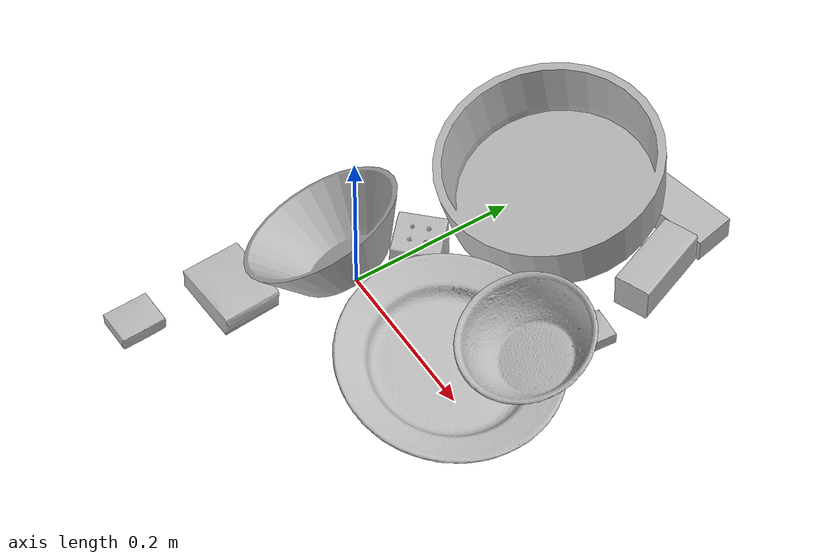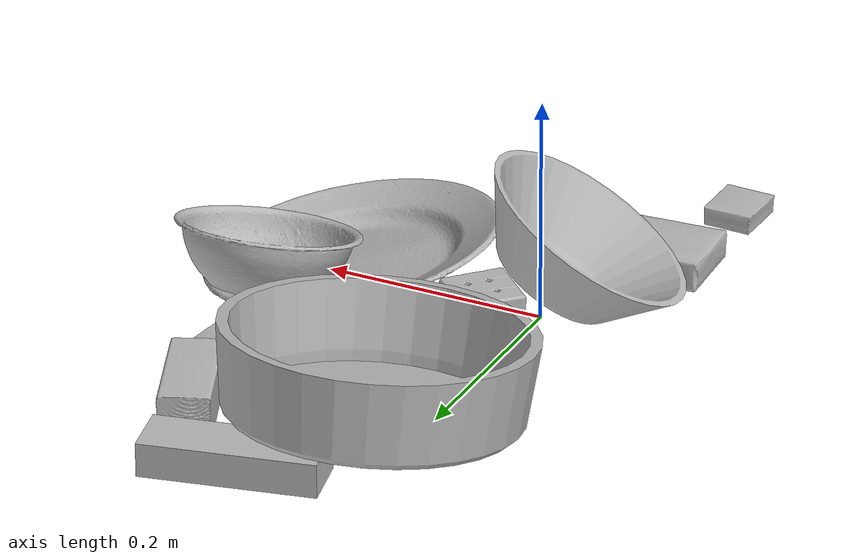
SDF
<sdf version="1.4">
  <world name="default">
    <light name="light1" type="point">
      <pose>0 0 1 0 0 0</pose>
      <diffuse>3 3 3 1</diffuse>
      <specular>3 3 3 1</specular>
    </light>
    <light name="light2" type="point">
      <pose>0 0.5 2 0 0 0</pose>
      <diffuse>1 1 1 1</diffuse>
      <specular>1 1 1 1</specular>
    </light>
    <light name="light3" type="point">
      <pose>0 0.5 2 0 0 0</pose>
      <diffuse>3 3 3 1</diffuse>
      <specular>3 3 3 1</specular>
    </light>
    <scene>
      <ambient>0.7 0.7 0.7</ambient>
    </scene>
    <model name="box1">
      <link name="link_box1">
        <collision name="default">
          <geometry>
            <mesh>
              <uri>model://rubiks_cube/collision_meshes/collision.obj</uri>
              <scale>1.0 1.0 1.0</scale>
            </mesh>
          </geometry>
          <surface>
            <friction>
              <ode>
                <mu>0.5</mu>
                <mu2>0.5</mu2>
              </ode>
            </friction>
          <contact>
        <ode>
            <max_vel>0</max_vel>
            <min_depth>0.0001</min_depth>
            <kp>1e8</kp>
        </ode>
    </contact></surface>
        </collision>
        <visual name="default">
          <geometry>
            <mesh>
              <uri>model://rubiks_cube/visual_meshes/visual.dae</uri>
              <scale>1.0 1.0 1.0</scale>
            </mesh>
          </geometry>
        </visual>
        <inertial>
          <mass>0.14937607944011688</mass>
          <pose>2.6721041649580002e-05 5.256967051536776e-05 -7.264316082000732e-06 -0.054671979216720346 -0.0981390543553378 -0.03445400726577695</pose>
          <inertia>
            <ixx>8.254031e-05</ixx>
            <iyy>8.2155384e-05</iyy>
            <izz>8.32243e-05</izz>
            <ixy>0</ixy>
            <ixz>0</ixz>
            <iyz>0</iyz>
          </inertia>
        </inertial>
      </link>
      <pose>0.02048821747303009 0.06986503303050995 0.02867909148335457 2.8496948468733054e-05 -3.866254430942188e-05 2.3611841567399035</pose>
    </model>
    <model name="box11">
      <link name="link_box11">
        <collision name="default">
          <geometry>
            <mesh>
              <uri>model://gelatin_box/collision_meshes/collision.obj</uri>
              <scale>1.0 1.0 1.0</scale>
            </mesh>
          </geometry>
          <surface>
            <friction>
              <ode>
                <mu>0.5</mu>
                <mu2>0.5</mu2>
              </ode>
            </friction>
          <contact>
        <ode>
            <max_vel>0</max_vel>
            <min_depth>0.0001</min_depth>
            <kp>1e8</kp>
        </ode>
    </contact></surface>
        </collision>
        <visual name="default">
          <geometry>
            <mesh>
              <uri>model://gelatin_box/visual_meshes/visual.dae</uri>
              <scale>1.0 1.0 1.0</scale>
            </mesh>
          </geometry>
        </visual>
        <inertial>
          <mass>0.1927502304315567</mass>
          <pose>0.0004319618456065655 0.00011156871914863586 -0.00036403213744051754 -0.0010503718519204429 -0.00475581822657324 0.016440557608202722</pose>
          <inertia>
            <ixx>0.00013606594</ixx>
            <iyy>9.7191194e-05</iyy>
            <izz>0.00020712269</izz>
            <ixy>0</ixy>
            <ixz>0</ixz>
            <iyz>0</iyz>
          </inertia>
        </inertial>
      </link>
      <pose>-0.05586498975753784 -0.1304234266281128 0.015168263576924801 0.005583016564306198 -0.007341472907728868 1.6079541032775422</pose>
    </model>
    <model name="box2">
      <link name="link_box2">
        <collision name="default">
          <geometry>
            <mesh>
              <uri>model://jenga/collision_meshes/collision.obj</uri>
              <scale>1.0 1.0 1.0</scale>
            </mesh>
          </geometry>
          <surface>
            <friction>
              <ode>
                <mu>0.5</mu>
                <mu2>0.5</mu2>
              </ode>
            </friction>
          <contact>
        <ode>
            <max_vel>0</max_vel>
            <min_depth>0.0001</min_depth>
            <kp>1e8</kp>
        </ode>
    </contact></surface>
        </collision>
        <visual name="default">
          <geometry>
            <mesh>
              <uri>model://jenga/visual_meshes/visual.dae</uri>
              <scale>1.0 1.0 1.0</scale>
            </mesh>
          </geometry>
        </visual>
        <inertial>
          <mass>0.17753760516643524</mass>
          <pose>-2.5028555228345795e-07 -0.00010250010382151231 -4.0923401684267446e-05 0.0 -7.342155186052628e-07 0.0</pose>
          <inertia>
            <ixx>4.912897e-05</ixx>
            <iyy>0.00033289654</iyy>
            <izz>0.00035539534</izz>
            <ixy>0</ixy>
            <ixz>0</ixz>
            <iyz>0</iyz>
          </inertia>
        </inertial>
      </link>
      <pose>0.10593234747648239 0.34820863604545593 0.01500007975846529 -0.00023351348689702568 1.0647491961671138e-06 0.21717294120035635</pose>
    </model>
    <model name="box21">
      <link name="link_box21">
        <collision name="default">
          <geometry>
            <mesh>
              <uri>model://cracker_box/collision_meshes/collision.obj</uri>
              <scale>0.25 0.25 0.25</scale>
            </mesh>
          </geometry>
          <surface>
            <friction>
              <ode>
                <mu>0.5</mu>
                <mu2>0.5</mu2>
              </ode>
            </friction>
          <contact>
        <ode>
            <max_vel>0</max_vel>
            <min_depth>0.0001</min_depth>
            <kp>1e8</kp>
        </ode>
    </contact></surface>
        </collision>
        <visual name="default">
          <geometry>
            <mesh>
              <uri>model://cracker_box/visual_meshes/visual.dae</uri>
              <scale>0.25 0.25 0.25</scale>
            </mesh>
          </geometry>
        </visual>
        <inertial>
          <mass>0.032025858759880066</mass>
          <pose>0.00023660347505938262 6.358561950037256e-05 -0.0004257383698131889 -0.0003162079452709603 -0.01110648960005095 0.0025467945380896087</pose>
          <inertia>
            <ixx>5.091218e-06</ixx>
            <iyy>8.406602e-06</iyy>
            <izz>1.1996991e-05</izz>
            <ixy>0</ixy>
            <ixz>0</ixz>
            <iyz>0</iyz>
          </inertia>
        </inertial>
      </link>
      <pose>0.2086944431066513 0.17032036185264587 0.009096029214560986 -0.014050472743481172 -0.005016674394173984 1.4750229289889312</pose>
    </model>
    <model name="box3">
      <link name="link_box3">
        <collision name="default">
          <geometry>
            <mesh>
              <uri>model://wood_block/collision_meshes/collision.obj</uri>
              <scale>0.5 0.5 0.5</scale>
            </mesh>
          </geometry>
          <surface>
            <friction>
              <ode>
                <mu>0.5</mu>
                <mu2>0.5</mu2>
              </ode>
            </friction>
          <contact>
        <ode>
            <max_vel>0</max_vel>
            <min_depth>0.0001</min_depth>
            <kp>1e8</kp>
        </ode>
    </contact></surface>
        </collision>
        <visual name="default">
          <geometry>
            <mesh>
              <uri>model://wood_block/visual_meshes/visual.dae</uri>
              <scale>0.5 0.5 0.5</scale>
            </mesh>
          </geometry>
        </visual>
        <inertial>
          <mass>0.12936852872371674</mass>
          <pose>-2.9066577553749084e-06 -0.00028540470520965755 0.00013204290007706732 -0.052209755292171825 -0.0051926950820086835 -0.006861377939779924</pose>
          <inertia>
            <ixx>4.327867e-05</ixx>
            <iyy>0.00013671734</iyy>
            <izz>0.00013620593</izz>
            <ixy>0</ixy>
            <ixz>0</ixz>
            <iyz>0</iyz>
          </inertia>
        </inertial>
      </link>
      <pose>0.18200618028640747 0.2812809646129608 0.02262927033007145 -0.005208420101540345 0.0057187943221568725 1.962680512108746</pose>
    </model>
    <model name="box31">
      <link name="link_box31">
        <collision name="default">
          <geometry>
            <mesh>
              <uri>model://pudding_box/collision_meshes/collision.obj</uri>
              <scale>0.5 0.5 0.5</scale>
            </mesh>
          </geometry>
          <surface>
            <friction>
              <ode>
                <mu>0.5</mu>
                <mu2>0.5</mu2>
              </ode>
            </friction>
          <contact>
        <ode>
            <max_vel>0</max_vel>
            <min_depth>0.0001</min_depth>
            <kp>1e8</kp>
        </ode>
    </contact></surface>
        </collision>
        <visual name="default">
          <geometry>
            <mesh>
              <uri>model://pudding_box/visual_meshes/visual.dae</uri>
              <scale>0.5 0.5 0.5</scale>
            </mesh>
          </geometry>
        </visual>
        <inertial>
          <mass>0.02777985855937004</mass>
          <pose>0.00024474109522998333 0.00040339428232982755 -0.0002594413817860186 0.005213100847255284 -0.006603800106148706 0.020079825159203687</pose>
          <inertia>
            <ixx>7.850925e-06</ixx>
            <iyy>5.282159e-06</iyy>
            <izz>1.1593943e-05</izz>
            <ixy>0</ixy>
            <ixz>0</ixz>
            <iyz>0</iyz>
          </inertia>
        </inertial>
      </link>
      <pose>-0.07763898372650146 -0.24265219271183014 0.009862903505563736 0.022348408967744832 -0.01139181433007016 -0.0001306267371602694</pose>
    </model>
    <model name="plate1">
      <link name="link_plate1">
        <collision name="default">
          <geometry>
            <mesh>
              <uri>model://plate/collision_meshes/collision.obj</uri>
              <scale>1.0 1.0 1.0</scale>
            </mesh>
          </geometry>
          <surface>
            <friction>
              <ode>
                <mu>0.5</mu>
                <mu2>0.5</mu2>
              </ode>
            </friction>
          <contact>
        <ode>
            <max_vel>0</max_vel>
            <min_depth>0.0001</min_depth>
            <kp>1e8</kp>
        </ode>
    </contact></surface>
        </collision>
        <visual name="default">
          <geometry>
            <mesh>
              <uri>model://plate/visual_meshes/visual.dae</uri>
              <scale>1.0 1.0 1.0</scale>
            </mesh>
          </geometry>
        </visual>
        <inertial>
          <mass>0.18243028223514557</mass>
          <pose>-0.0006044635083526373 0.00027825916185975075 -0.0010561967501416802 0.002218802985991306 -0.003225472580220492 0.4526054178664253</pose>
          <inertia>
            <ixx>0.00085341244</ixx>
            <iyy>0.00084524986</iyy>
            <izz>0.0016691468</izz>
            <ixy>0</ixy>
            <ixz>0</ixz>
            <iyz>0</iyz>
          </inertia>
        </inertial>
      </link>
      <pose>0.1695098876953125 0.014332578517496586 0.02826501429080963 0.019834674686875567 0.1947639022506125 0.23968636992212597</pose>
    </model>
    <model name="bowl1">
      <link name="link_bowl1">
        <collision name="default">
          <geometry>
            <mesh>
              <uri>model://bowl_a/collision_meshes/collision.obj</uri>
              <scale>1.0 1.0 1.0</scale>
            </mesh>
          </geometry>
          <surface>
            <friction>
              <ode>
                <mu>0.5</mu>
                <mu2>0.5</mu2>
              </ode>
            </friction>
          <contact>
        <ode>
            <max_vel>0</max_vel>
            <min_depth>0.0001</min_depth>
            <kp>1e8</kp>
        </ode>
    </contact></surface>
        </collision>
        <visual name="default">
          <geometry>
            <mesh>
              <uri>model://bowl_a/visual_meshes/visual.dae</uri>
              <scale>1.0 1.0 1.0</scale>
            </mesh>
          </geometry>
        </visual>
        <inertial>
          <mass>0.33530884981155396</mass>
          <pose>0.00027867525932379067 4.7312179958680645e-05 -0.0013765293406322598 -0.0009805353119733814 -0.0010938238033148682 -0.19123781325276382</pose>
          <inertia>
            <ixx>0.0009546399</ixx>
            <iyy>0.0009605007</iyy>
            <izz>0.0016978635</izz>
            <ixy>0</ixy>
            <ixz>0</ixz>
            <iyz>0</iyz>
          </inertia>
        </inertial>
      </link>
      <pose>-0.019388671964406967 -0.018179792910814285 0.05621812120079994 0.5871418472215416 0.006928397369121675 -1.13229194247058</pose>
    </model>
    <model name="plate2">
      <link name="link_plate2">
        <collision name="default">
          <geometry>
            <mesh>
              <uri>model://pan_tefal/collision_meshes/collision.obj</uri>
              <scale>1.0 1.0 1.0</scale>
            </mesh>
          </geometry>
          <surface>
            <friction>
              <ode>
                <mu>0.5</mu>
                <mu2>0.5</mu2>
              </ode>
            </friction>
          <contact>
        <ode>
            <max_vel>0</max_vel>
            <min_depth>0.0001</min_depth>
            <kp>1e8</kp>
        </ode>
    </contact></surface>
        </collision>
        <visual name="default">
          <geometry>
            <mesh>
              <uri>model://pan_tefal/visual_meshes/visual.dae</uri>
              <scale>1.0 1.0 1.0</scale>
            </mesh>
          </geometry>
        </visual>
        <inertial>
          <mass>1.3054066896438599</mass>
          <pose>-0.00018001779972109944 3.2791245757834986e-05 -0.008514936082065105 0.0008190347553724757 -0.0003301394488099971 -0.33186691456643896</pose>
          <inertia>
            <ixx>0.00901116</ixx>
            <iyy>0.009069256</iyy>
            <izz>0.016587809</izz>
            <ixy>0</ixy>
            <ixz>0</ixz>
            <iyz>0</iyz>
          </inertia>
        </inertial>
      </link>
      <pose>0.032196223735809326 0.24183960258960724 0.05718251317739487 2.510884245061643e-05 -0.16631125751260054 1.5618731323286725</pose>
    </model>
    <model name="bowl2">
      <link name="link_bowl2">
        <collision name="default">
          <geometry>
            <mesh>
              <uri>model://bowl/collision_meshes/collision.obj</uri>
              <scale>1.0 1.0 1.0</scale>
            </mesh>
          </geometry>
          <surface>
            <friction>
              <ode>
                <mu>0.5</mu>
                <mu2>0.5</mu2>
              </ode>
            </friction>
          <contact>
        <ode>
            <max_vel>0</max_vel>
            <min_depth>0.0001</min_depth>
            <kp>1e8</kp>
        </ode>
    </contact></surface>
        </collision>
        <visual name="default">
          <geometry>
            <mesh>
              <uri>model://bowl/visual_meshes/visual.dae</uri>
              <scale>1.0 1.0 1.0</scale>
            </mesh>
          </geometry>
        </visual>
        <inertial>
          <mass>0.1096961572766304</mass>
          <pose>0.00020445209520403296 -0.0010302049340680242 -0.0008042648551054299 -0.015764066902751193 0.014546817497496476 0.7140421604823016</pose>
          <inertia>
            <ixx>0.00025198064</ixx>
            <iyy>0.00024635042</iyy>
            <izz>0.0004239182</izz>
            <ixy>0</ixy>
            <ixz>0</ixz>
            <iyz>0</iyz>
          </inertia>
        </inertial>
      </link>
      <pose>0.2151562124490738 0.0894332006573677 0.05021017789840698 0.06836301769782119 0.2930332843742719 -1.3320019599917479</pose>
    </model>
  <physics type="ode">
      <max_contacts>50</max_contacts>
      <ode>
        <solver>
          <type>quick</type>
          <iters>75</iters>
        </solver>
        <constraints>
          <contact_max_correcting_vel>0</contact_max_correcting_vel>
          <contact_surface_layer>0</contact_surface_layer>
        </constraints>
      </ode>
    </physics></world>
</sdf>
